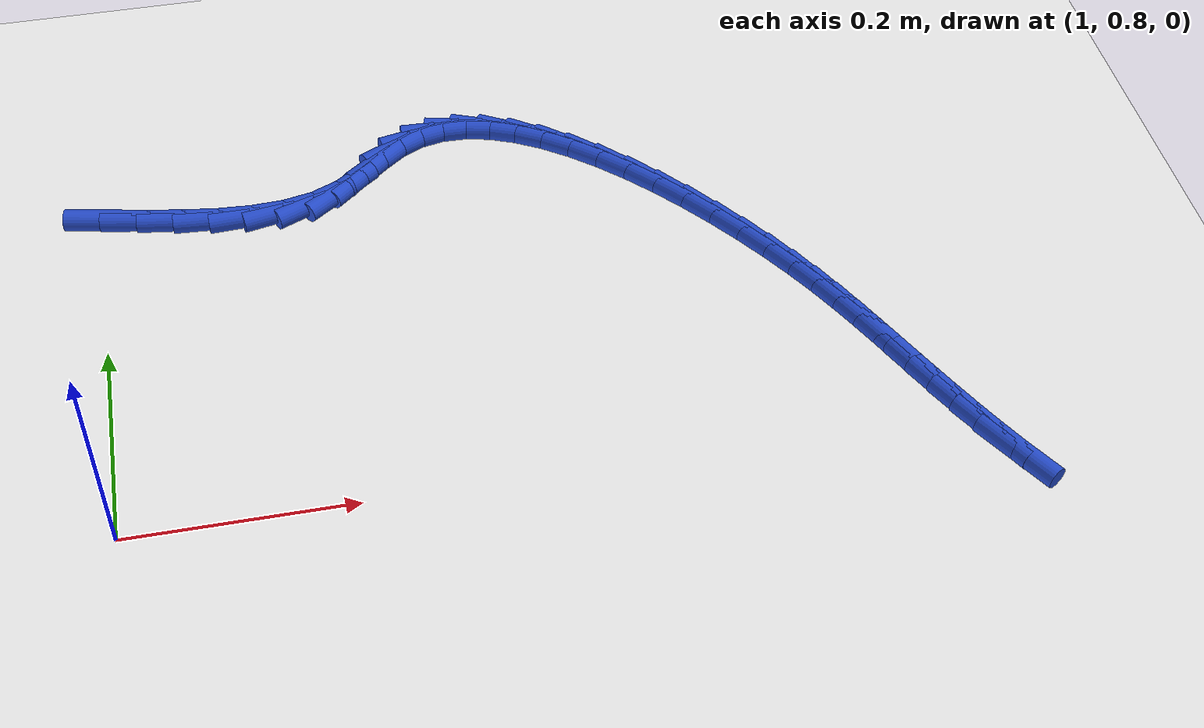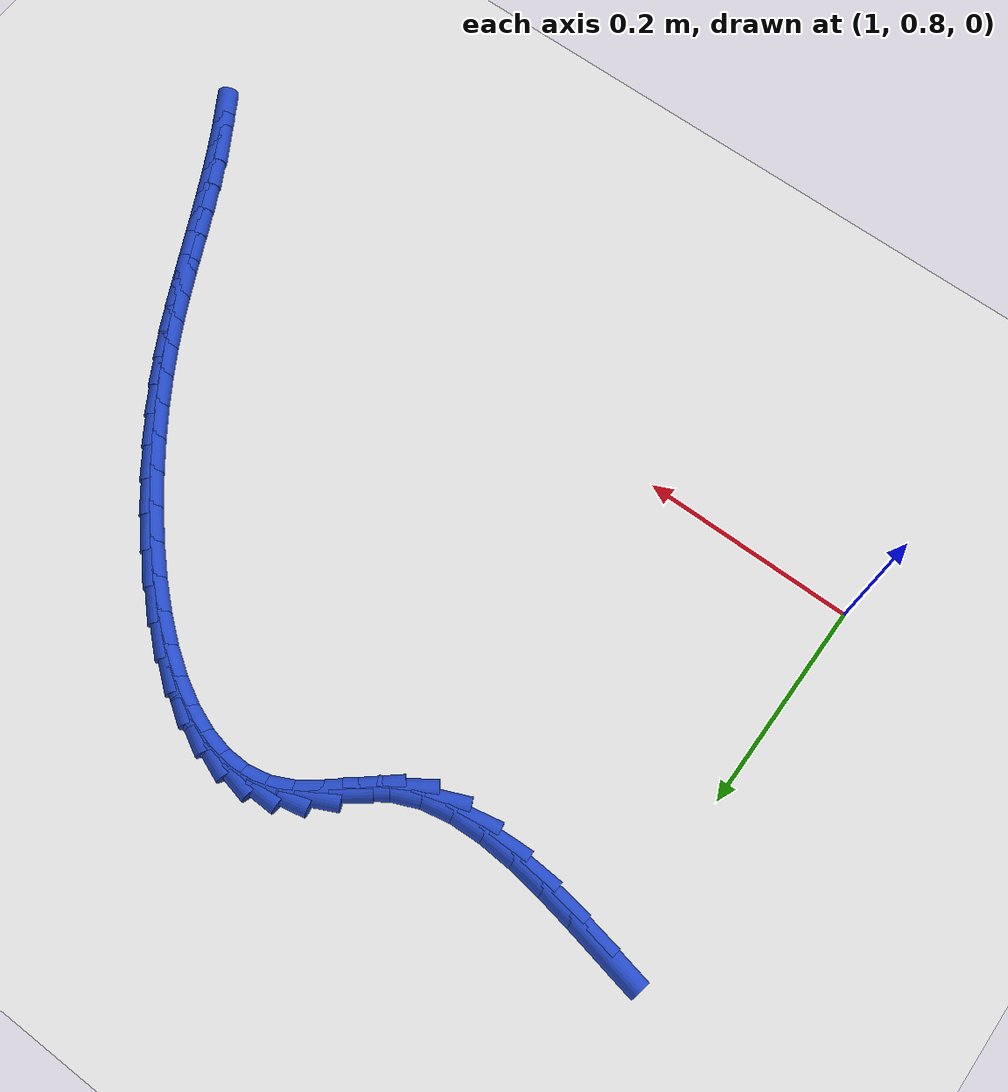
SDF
<sdf version="1.6">
 <world name="default">
  <model name="ground_plane">
   <static>1</static>
   <link name="link">
    <collision name="collision">
     <geometry><plane><normal>0 0 1</normal><size>100 100</size></plane></geometry>
     <surface><friction><ode><mu>100</mu><mu2>50</mu2></ode></friction></surface>
    </collision>
    <visual name="visual">
     <cast_shadows>0</cast_shadows>
     <geometry><plane><normal>0 0 1</normal><size>100 100</size></plane></geometry>
     <material>
      <script><uri>file://media/materials/scripts/gazebo.material</uri><name>Gazebo/WhiteGlow</name></script>
     </material>
    </visual>
   </link>
  </model>
  <model name="line">
   <link name="link_67">
    <pose>1.006592187970068 1.155349850004818 0.01 0 1.57 -0.19580898868376148</pose>
    <collision name="collision">
     <geometry><cylinder><radius>0.01</radius><length>0.08</length></cylinder></geometry>
    </collision>
    <visual name="visual">
     <material>
      <script><name>Gazebo/Blue</name><uri>file://media/materials/scripts/gazebo.material</uri></script>
     </material>
     <geometry><cylinder><radius>0.01</radius><length>0.08</length></cylinder></geometry>
    </visual>
   </link>
   <link name="link_68">
    <pose>1.0395017266327704 1.148822226950663 0.01 0 1.57 -0.17631178104226214</pose>
    <collision name="collision">
     <geometry><cylinder><radius>0.01</radius><length>0.08</length></cylinder></geometry>
    </collision>
    <visual name="visual">
     <material>
      <script><name>Gazebo/Blue</name><uri>file://media/materials/scripts/gazebo.material</uri></script>
     </material>
     <geometry><cylinder><radius>0.01</radius><length>0.08</length></cylinder></geometry>
    </visual>
   </link>
   <link name="link_69">
    <pose>1.072828009975998 1.1428847589643072 0.01 0 1.57 -0.13277386180010536</pose>
    <collision name="collision">
     <geometry><cylinder><radius>0.01</radius><length>0.08</length></cylinder></geometry>
    </collision>
    <visual name="visual">
     <material>
      <script><name>Gazebo/Blue</name><uri>file://media/materials/scripts/gazebo.material</uri></script>
     </material>
     <geometry><cylinder><radius>0.01</radius><length>0.08</length></cylinder></geometry>
    </visual>
   </link>
   <link name="link_70">
    <pose>1.10590489216323 1.1384670230800245 0.01 0 1.57 -0.061128504838677725</pose>
    <collision name="collision">
     <geometry><cylinder><radius>0.01</radius><length>0.08</length></cylinder></geometry>
    </collision>
    <visual name="visual">
     <material>
      <script><name>Gazebo/Blue</name><uri>file://media/materials/scripts/gazebo.material</uri></script>
     </material>
     <geometry><cylinder><radius>0.01</radius><length>0.08</length></cylinder></geometry>
    </visual>
   </link>
   <link name="link_71">
    <pose>1.138066227357946 1.1364985963320884 0.01 0 1.57 0.046091463732011284</pose>
    <collision name="collision">
     <geometry><cylinder><radius>0.01</radius><length>0.08</length></cylinder></geometry>
    </collision>
    <visual name="visual">
     <material>
      <script><name>Gazebo/Blue</name><uri>file://media/materials/scripts/gazebo.material</uri></script>
     </material>
     <geometry><cylinder><radius>0.01</radius><length>0.08</length></cylinder></geometry>
    </visual>
   </link>
   <link name="link_72">
    <pose>1.1686458697236253 1.137909055754771 0.01 0 1.57 0.19917879251803572</pose>
    <collision name="collision">
     <geometry><cylinder><radius>0.01</radius><length>0.08</length></cylinder></geometry>
    </collision>
    <visual name="visual">
     <material>
      <script><name>Gazebo/Blue</name><uri>file://media/materials/scripts/gazebo.material</uri></script>
     </material>
     <geometry><cylinder><radius>0.01</radius><length>0.08</length></cylinder></geometry>
    </visual>
   </link>
   <link name="link_73">
    <pose>1.196977673423747 1.1436279783823466 0.01 0 1.57 0.40683771690887793</pose>
    <collision name="collision">
     <geometry><cylinder><radius>0.01</radius><length>0.08</length></cylinder></geometry>
    </collision>
    <visual name="visual">
     <material>
      <script><name>Gazebo/Blue</name><uri>file://media/materials/scripts/gazebo.material</uri></script>
     </material>
     <geometry><cylinder><radius>0.01</radius><length>0.08</length></cylinder></geometry>
    </visual>
   </link>
   <link name="link_74">
    <pose>1.222397399825159 1.154580746220835 0.01 0 1.57 0.6162461585901174</pose>
    <collision name="collision">
     <geometry><cylinder><radius>0.01</radius><length>0.08</length></cylinder></geometry>
    </collision>
    <visual name="visual">
     <material>
      <script><name>Gazebo/Blue</name><uri>file://media/materials/scripts/gazebo.material</uri></script>
     </material>
     <geometry><cylinder><radius>0.01</radius><length>0.08</length></cylinder></geometry>
    </visual>
   </link>
   <link name="link_75">
    <pose>1.2448052333579558 1.1704512529613882 0.01 0 1.57 0.7032850705173879</pose>
    <collision name="collision">
     <geometry><cylinder><radius>0.01</radius><length>0.08</length></cylinder></geometry>
    </collision>
    <visual name="visual">
     <material>
      <script><name>Gazebo/Blue</name><uri>file://media/materials/scripts/gazebo.material</uri></script>
     </material>
     <geometry><cylinder><radius>0.01</radius><length>0.08</length></cylinder></geometry>
    </visual>
   </link>
   <link name="link_76">
    <pose>1.2654501981878739 1.1879565242143324 0.01 0 1.57 0.6490485500279756</pose>
    <collision name="collision">
     <geometry><cylinder><radius>0.01</radius><length>0.08</length></cylinder></geometry>
    </collision>
    <visual name="visual">
     <material>
      <script><name>Gazebo/Blue</name><uri>file://media/materials/scripts/gazebo.material</uri></script>
     </material>
     <geometry><cylinder><radius>0.01</radius><length>0.08</length></cylinder></geometry>
    </visual>
   </link>
   <link name="link_77">
    <pose>1.285778560560118 1.2033797377322317 0.01 0 1.57 0.44733172068689386</pose>
    <collision name="collision">
     <geometry><cylinder><radius>0.01</radius><length>0.08</length></cylinder></geometry>
    </collision>
    <visual name="visual">
     <material>
      <script><name>Gazebo/Blue</name><uri>file://media/materials/scripts/gazebo.material</uri></script>
     </material>
     <geometry><cylinder><radius>0.01</radius><length>0.08</length></cylinder></geometry>
    </visual>
   </link>
   <link name="link_78">
    <pose>1.3070137638399724 1.2135677170768848 0.01 0 1.57 0.20257526460954614</pose>
    <collision name="collision">
     <geometry><cylinder><radius>0.01</radius><length>0.08</length></cylinder></geometry>
    </collision>
    <visual name="visual">
     <material>
      <script><name>Gazebo/Blue</name><uri>file://media/materials/scripts/gazebo.material</uri></script>
     </material>
     <geometry><cylinder><radius>0.01</radius><length>0.08</length></cylinder></geometry>
    </visual>
   </link>
   <link name="link_79">
    <pose>1.3292825164002517 1.2181415524498738 0.01 0 1.57 -0.024553526507848977</pose>
    <collision name="collision">
     <geometry><cylinder><radius>0.01</radius><length>0.08</length></cylinder></geometry>
    </collision>
    <visual name="visual">
     <material>
      <script><name>Gazebo/Blue</name><uri>file://media/materials/scripts/gazebo.material</uri></script>
     </material>
     <geometry><cylinder><radius>0.01</radius><length>0.08</length></cylinder></geometry>
    </visual>
   </link>
   <link name="link_80">
    <pose>1.3523746665528644 1.2175744447592558 0.01 0 1.57 -0.21733293142520654</pose>
    <collision name="collision">
     <geometry><cylinder><radius>0.01</radius><length>0.08</length></cylinder></geometry>
    </collision>
    <visual name="visual">
     <material>
      <script><name>Gazebo/Blue</name><uri>file://media/materials/scripts/gazebo.material</uri></script>
     </material>
     <geometry><cylinder><radius>0.01</radius><length>0.08</length></cylinder></geometry>
    </visual>
   </link>
   <link name="link_81">
    <pose>1.3760799721058283 1.2123398238489111 0.01 0 1.57 -0.3728097742965832</pose>
    <collision name="collision">
     <geometry><cylinder><radius>0.01</radius><length>0.08</length></cylinder></geometry>
    </collision>
    <visual name="visual">
     <material>
      <script><name>Gazebo/Blue</name><uri>file://media/materials/scripts/gazebo.material</uri></script>
     </material>
     <geometry><cylinder><radius>0.01</radius><length>0.08</length></cylinder></geometry>
    </visual>
   </link>
   <link name="link_82">
    <pose>1.4001881908671605 1.2029111195627187 0.01 0 1.57 -0.4959891873836714</pose>
    <collision name="collision">
     <geometry><cylinder><radius>0.01</radius><length>0.08</length></cylinder></geometry>
    </collision>
    <visual name="visual">
     <material>
      <script><name>Gazebo/Blue</name><uri>file://media/materials/scripts/gazebo.material</uri></script>
     </material>
     <geometry><cylinder><radius>0.01</radius><length>0.08</length></cylinder></geometry>
    </visual>
   </link>
   <link name="link_83">
    <pose>1.4244890806448776 1.1897617617445584 0.01 0 1.57 -0.5939007642213687</pose>
    <collision name="collision">
     <geometry><cylinder><radius>0.01</radius><length>0.08</length></cylinder></geometry>
    </collision>
    <visual name="visual">
     <material>
      <script><name>Gazebo/Blue</name><uri>file://media/materials/scripts/gazebo.material</uri></script>
     </material>
     <geometry><cylinder><radius>0.01</radius><length>0.08</length></cylinder></geometry>
    </visual>
   </link>
   <link name="link_84">
    <pose>1.4487723992469972 1.1733651802383098 0.01 0 1.57 -0.6728616490798006</pose>
    <collision name="collision">
     <geometry><cylinder><radius>0.01</radius><length>0.08</length></cylinder></geometry>
    </collision>
    <visual name="visual">
     <material>
      <script><name>Gazebo/Blue</name><uri>file://media/materials/scripts/gazebo.material</uri></script>
     </material>
     <geometry><cylinder><radius>0.01</radius><length>0.08</length></cylinder></geometry>
    </visual>
   </link>
   <link name="link_85">
    <pose>1.4728279044815369 1.1541948048878525 0.01 0 1.57 -0.7378227231635639</pose>
    <collision name="collision">
     <geometry><cylinder><radius>0.01</radius><length>0.08</length></cylinder></geometry>
    </collision>
    <visual name="visual">
     <material>
      <script><name>Gazebo/Blue</name><uri>file://media/materials/scripts/gazebo.material</uri></script>
     </material>
     <geometry><cylinder><radius>0.01</radius><length>0.08</length></cylinder></geometry>
    </visual>
   </link>
   <link name="link_86">
    <pose>1.4964453541565133 1.1327240655370656 0.01 0 1.57 -0.7924986303031897</pose>
    <collision name="collision">
     <geometry><cylinder><radius>0.01</radius><length>0.08</length></cylinder></geometry>
    </collision>
    <visual name="visual">
     <material>
      <script><name>Gazebo/Blue</name><uri>file://media/materials/scripts/gazebo.material</uri></script>
     </material>
     <geometry><cylinder><radius>0.01</radius><length>0.08</length></cylinder></geometry>
    </visual>
   </link>
   <link name="link_87">
    <pose>1.519414506079944 1.1094263920298284 0.01 0 1.57 -0.8396747547925982</pose>
    <collision name="collision">
     <geometry><cylinder><radius>0.01</radius><length>0.08</length></cylinder></geometry>
    </collision>
    <visual name="visual">
     <material>
      <script><name>Gazebo/Blue</name><uri>file://media/materials/scripts/gazebo.material</uri></script>
     </material>
     <geometry><cylinder><radius>0.01</radius><length>0.08</length></cylinder></geometry>
    </visual>
   </link>
   <link name="link_88">
    <pose>1.541525118059846 1.084775214210021 0.01 0 1.57 -0.8814964665037323</pose>
    <collision name="collision">
     <geometry><cylinder><radius>0.01</radius><length>0.08</length></cylinder></geometry>
    </collision>
    <visual name="visual">
     <material>
      <script><name>Gazebo/Blue</name><uri>file://media/materials/scripts/gazebo.material</uri></script>
     </material>
     <geometry><cylinder><radius>0.01</radius><length>0.08</length></cylinder></geometry>
    </visual>
   </link>
   <link name="link_89">
    <pose>1.5625669479042361 1.0592439619215226 0.01 0 1.57 -0.9197050098906521</pose>
    <collision name="collision">
     <geometry><cylinder><radius>0.01</radius><length>0.08</length></cylinder></geometry>
    </collision>
    <visual name="visual">
     <material>
      <script><name>Gazebo/Blue</name><uri>file://media/materials/scripts/gazebo.material</uri></script>
     </material>
     <geometry><cylinder><radius>0.01</radius><length>0.08</length></cylinder></geometry>
    </visual>
   </link>
   <link name="link_90">
    <pose>1.5823297534211325 1.033306065008213 0.01 0 1.57 -0.9558347476576019</pose>
    <collision name="collision">
     <geometry><cylinder><radius>0.01</radius><length>0.08</length></cylinder></geometry>
    </collision>
    <visual name="visual">
     <material>
      <script><name>Gazebo/Blue</name><uri>file://media/materials/scripts/gazebo.material</uri></script>
     </material>
     <geometry><cylinder><radius>0.01</radius><length>0.08</length></cylinder></geometry>
    </visual>
   </link>
   <link name="link_91">
    <pose>1.600603292418552 1.0074349533139708 0.01 0 1.57 -0.9914035154743359</pose>
    <collision name="collision">
     <geometry><cylinder><radius>0.01</radius><length>0.08</length></cylinder></geometry>
    </collision>
    <visual name="visual">
     <material>
      <script><name>Gazebo/Blue</name><uri>file://media/materials/scripts/gazebo.material</uri></script>
     </material>
     <geometry><cylinder><radius>0.01</radius><length>0.08</length></cylinder></geometry>
    </visual>
   </link>
   <link name="link_92">
    <pose>1.6171773227045119 0.9821040566826769 0.01 0 1.57 -1.027548412618177</pose>
    <collision name="collision">
     <geometry><cylinder><radius>0.01</radius><length>0.08</length></cylinder></geometry>
    </collision>
    <visual name="visual">
     <material>
      <script><name>Gazebo/Blue</name><uri>file://media/materials/scripts/gazebo.material</uri></script>
     </material>
     <geometry><cylinder><radius>0.01</radius><length>0.08</length></cylinder></geometry>
    </visual>
   </link>
   <link name="link_93">
    <pose>1.6319144653663702 0.9576988819626961 0.01 0 1.57 -1.0612299455735912</pose>
    <collision name="collision">
     <geometry><cylinder><radius>0.01</radius><length>0.08</length></cylinder></geometry>
    </collision>
    <visual name="visual">
     <material>
      <script><name>Gazebo/Blue</name><uri>file://media/materials/scripts/gazebo.material</uri></script>
     </material>
     <geometry><cylinder><radius>0.01</radius><length>0.08</length></cylinder></geometry>
    </visual>
   </link>
   <link name="link_94">
    <pose>1.6451126265496645 0.934079684235486 0.01 0 1.57 -1.0888642648271958</pose>
    <collision name="collision">
     <geometry><cylinder><radius>0.01</radius><length>0.08</length></cylinder></geometry>
    </collision>
    <visual name="visual">
     <material>
      <script><name>Gazebo/Blue</name><uri>file://media/materials/scripts/gazebo.material</uri></script>
     </material>
     <geometry><cylinder><radius>0.01</radius><length>0.08</length></cylinder></geometry>
    </visual>
   </link>
   <link name="link_95">
    <pose>1.6572306611608343 0.9109125041948046 0.01 0 1.57 -1.1081104267429303</pose>
    <collision name="collision">
     <geometry><cylinder><radius>0.01</radius><length>0.08</length></cylinder></geometry>
    </collision>
    <visual name="visual">
     <material>
      <script><name>Gazebo/Blue</name><uri>file://media/materials/scripts/gazebo.material</uri></script>
     </material>
     <geometry><cylinder><radius>0.01</radius><length>0.08</length></cylinder></geometry>
    </visual>
   </link>
   <link name="link_96">
    <pose>1.6687276828558832 0.8878630703053065 0.01 0 1.57 -1.1174892820973088</pose>
    <collision name="collision">
     <geometry><cylinder><radius>0.01</radius><length>0.08</length></cylinder></geometry>
    </collision>
    <visual name="visual">
     <material>
      <script><name>Gazebo/Blue</name><uri>file://media/materials/scripts/gazebo.material</uri></script>
     </material>
     <geometry><cylinder><radius>0.01</radius><length>0.08</length></cylinder></geometry>
    </visual>
   </link>
   <link name="link_97">
    <pose>1.6800585618996928 0.8646030803684699 0.01 0 1.57 -1.1181761782826163</pose>
    <collision name="collision">
     <geometry><cylinder><radius>0.01</radius><length>0.08</length></cylinder></geometry>
    </collision>
    <visual name="visual">
     <material>
      <script><name>Gazebo/Blue</name><uri>file://media/materials/scripts/gazebo.material</uri></script>
     </material>
     <geometry><cylinder><radius>0.01</radius><length>0.08</length></cylinder></geometry>
    </visual>
   </link>
   <link name="link_98">
    <pose>1.6915311426933104 0.8410110589613584 0.01 0 1.57 -1.1123538909597073</pose>
    <collision name="collision">
     <geometry><cylinder><radius>0.01</radius><length>0.08</length></cylinder></geometry>
    </collision>
    <visual name="visual">
     <material>
      <script><name>Gazebo/Blue</name><uri>file://media/materials/scripts/gazebo.material</uri></script>
     </material>
     <geometry><cylinder><radius>0.01</radius><length>0.08</length></cylinder></geometry>
    </visual>
   </link>
   <link name="link_99">
    <pose>1.7032720510171826 0.817220457665019 0.01 0 1.57 -1.100303819839261</pose>
    <collision name="collision">
     <geometry><cylinder><radius>0.01</radius><length>0.08</length></cylinder></geometry>
    </collision>
    <visual name="visual">
     <material>
      <script><name>Gazebo/Blue</name><uri>file://media/materials/scripts/gazebo.material</uri></script>
     </material>
     <geometry><cylinder><radius>0.01</radius><length>0.08</length></cylinder></geometry>
    </visual>
   </link>
   <link name="link_100">
    <pose>1.7153967368466787 0.7933804494830317 0.01 0 1.57 -1.0820712097036902</pose>
    <collision name="collision">
     <geometry><cylinder><radius>0.01</radius><length>0.08</length></cylinder></geometry>
    </collision>
    <visual name="visual">
     <material>
      <script><name>Gazebo/Blue</name><uri>file://media/materials/scripts/gazebo.material</uri></script>
     </material>
     <geometry><cylinder><radius>0.01</radius><length>0.08</length></cylinder></geometry>
    </visual>
   </link>
   <link name="link_101">
    <pose>1.7280206501571658 0.769640207418978 0.01 0 1.57 -1.0576074338056913</pose>
    <collision name="collision">
     <geometry><cylinder><radius>0.01</radius><length>0.08</length></cylinder></geometry>
    </collision>
    <visual name="visual">
     <material>
      <script><name>Gazebo/Blue</name><uri>file://media/materials/scripts/gazebo.material</uri></script>
     </material>
     <geometry><cylinder><radius>0.01</radius><length>0.08</length></cylinder></geometry>
    </visual>
   </link>
   <link name="link_102">
    <pose>1.7412592409240129 0.7461489044764384 0.01 0 1.57 -1.0267928615488016</pose>
    <collision name="collision">
     <geometry><cylinder><radius>0.01</radius><length>0.08</length></cylinder></geometry>
    </collision>
    <visual name="visual">
     <material>
      <script><name>Gazebo/Blue</name><uri>file://media/materials/scripts/gazebo.material</uri></script>
     </material>
     <geometry><cylinder><radius>0.01</radius><length>0.08</length></cylinder></geometry>
    </visual>
   </link>
  </model>
 </world>
</sdf>
